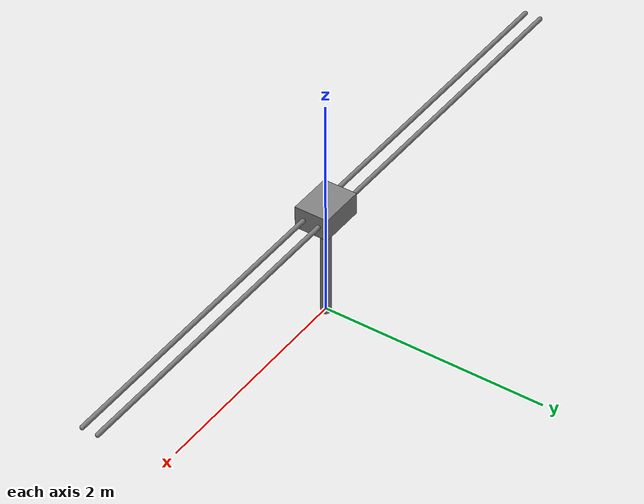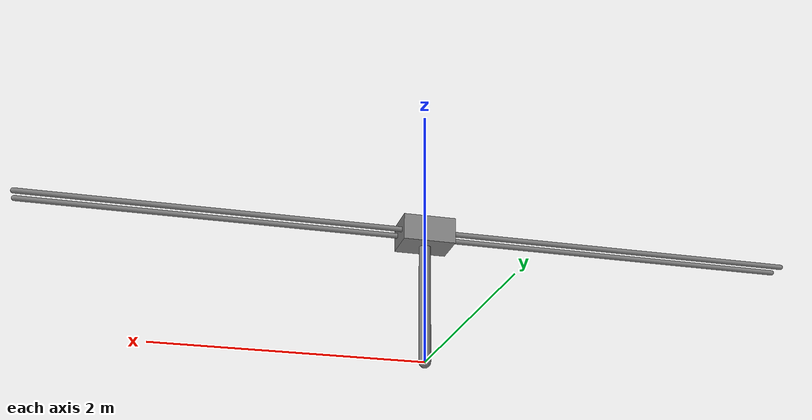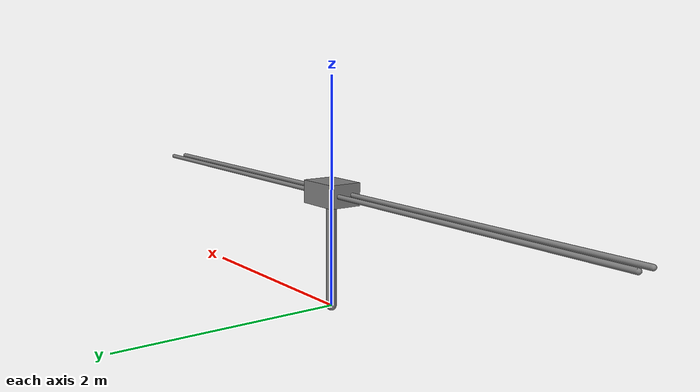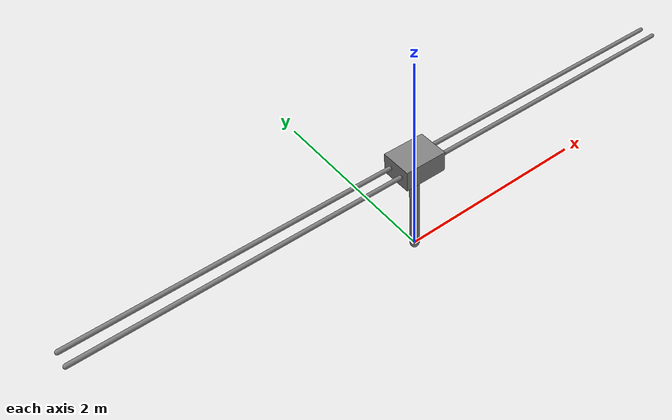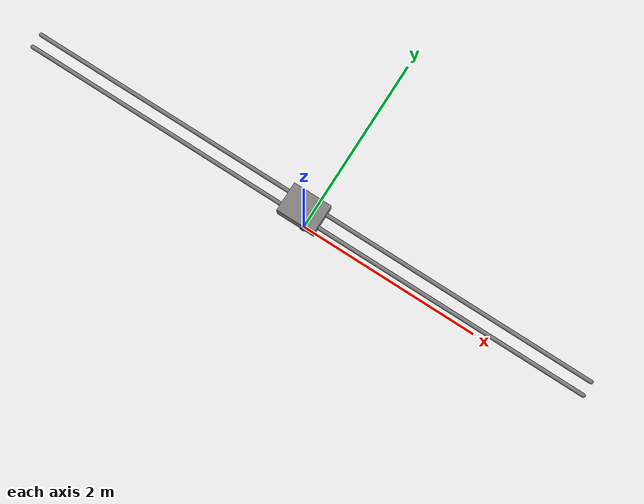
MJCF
<mujoco model="cartpole">
  <option timestep="0.01" iterations="1" ls_iterations="5">
    <flag contact="disable" eulerdamp="disable"/>
  </option>

  <default>
    <default class="pole">
      <joint type="hinge" axis="0 1 0"  damping="2e-6"/>
      <geom type="capsule" fromto="0 0 -1 0 0 0" size="0.045" mass=".1"/>
    </default>
  </default>

  <worldbody>
    <light name="light" pos="0 0 6"/>
    <camera name="fixed" pos="0 -10 1" zaxis="0 -1 0"/>
    <camera name="lookatcart" mode="targetbody" target="cart" pos="0 -2 2"/>
    <geom name="rail1" type="capsule" pos="0  .07 1" zaxis="1 0 0" size="0.02 3"/>
    <geom name="rail2" type="capsule" pos="0 -.07 1" zaxis="1 0 0" size="0.02 3"/>
    <body name="cart" pos="0 0 1">
    <joint name="slider" type="slide" axis="1 0 0" damping="1.0e-2"/>
      <geom name="cart" type="box" size="0.2 0.15 0.1" mass="1"/>
      <body name="pole_1" childclass="pole">
        <joint name="hinge_1" damping="1.0e-3"/>
        <geom name="pole_1"/>
        <site name="tip" pos="0 0 -1"/>
      </body>
    </body>
  </worldbody>

  <actuator>
    <motor name="slide" joint="slider" gear="10" ctrllimited="true" ctrlrange="-1 1" />
  </actuator>
</mujoco>
